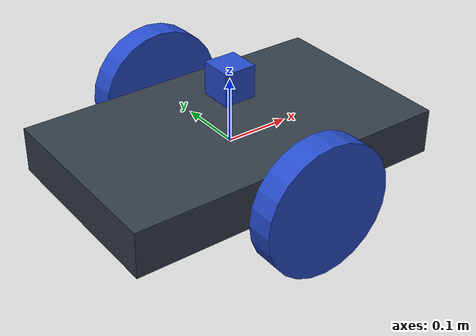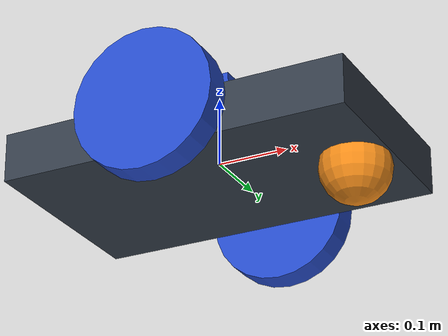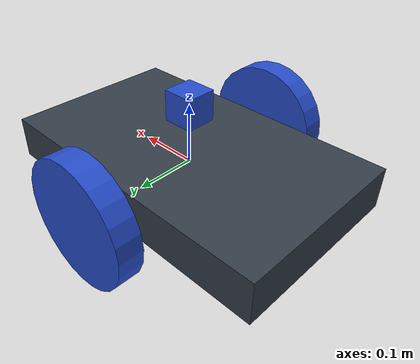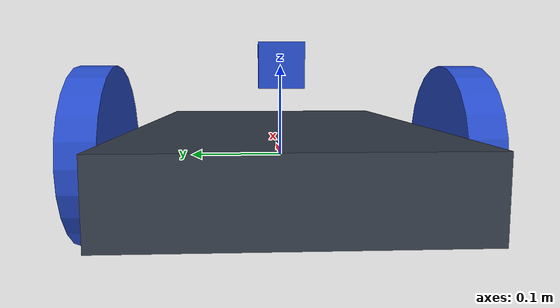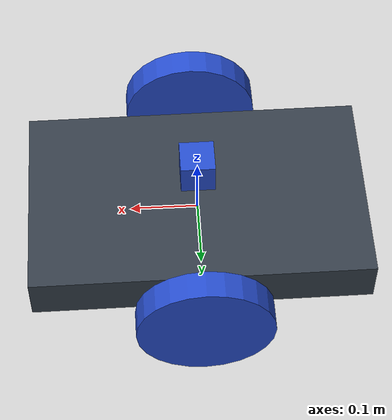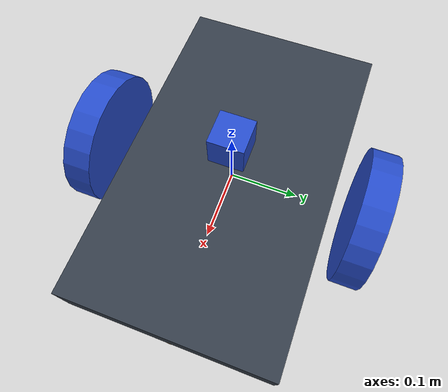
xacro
<?xml version="1.0" ?>

<robot name="droid" xmlns:xacro="https://www.ros.org/wiki/xacro" >

  <material name="black">
    <color rgba="0.0 0.0 0.0 1.0"/>
  </material>
  <material name="blue">
    <color rgba="0.203125 0.23828125 0.28515625 1.0"/>
  </material>
  <material name="green">
    <color rgba="0.0 0.8 0.0 1.0"/>
  </material>
  <material name="grey">
    <color rgba="0.2 0.2 0.2 1.0"/>
  </material>
  <material name="orange">
    <color rgba="1.0 0.423529411765 0.0392156862745 1.0"/>
  </material>
  <material name="brown">
    <color rgba="0.870588235294 0.811764705882 0.764705882353 1.0"/>
  </material>
  <material name="red">
    <color rgba="0.80078125 0.12890625 0.1328125 1.0"/>
  </material>
  <material name="white">
    <color rgba="1.0 1.0 1.0 1.0"/>
  </material>

  <gazebo reference="base_link">
    <material>Gazebo/Orange</material>
  </gazebo>
  <gazebo reference="link_left_wheel">
    <material>Gazebo/Blue</material>
  </gazebo>
  <gazebo reference="link_right_wheel">
    <material>Gazebo/Blue</material>
  </gazebo>

  <link name="base_link">
    <!-- pose and inertial -->
    <pose>0 0 0.1 0 0 0</pose>

    <inertial>
      <mass value="5"/>
      <origin rpy="0 0 0" xyz="0 0 0.1"/>
      <inertia ixx="0.0395416666667" ixy="0" ixz="0" iyy="0.106208333333" iyz="0" izz="0.106208333333"/>
    </inertial>

    <collision name="collision_chassis">
      <geometry>
        <box size="0.5 0.3 0.07"/>
      </geometry>
    </collision>

    <visual>
      <origin rpy="0 0 0" xyz="0 0 0"/>
      <geometry>
        <box size="0.5 0.3 0.07"/>
      </geometry>
      <material name="blue"/>
    </visual>

    <!-- caster front -->
    <collision name="caster_front_collision">
      <origin rpy=" 0 0 0" xyz="-0.35 0 -0.05"/>
      <geometry>
        <sphere radius="0.05"/>
      </geometry>
      <surface>
        <friction>
          <ode>
            <mu>0</mu>
            <mu2>0</mu2>
            <slip1>1.0</slip1>
            <slip2>1.0</slip2>
          </ode>
        </friction>
      </surface>
    </collision>
    <visual name="caster_front_visual">
      <origin rpy=" 0 0 0" xyz="0.2 0 -0.05"/>
      <geometry>
        <sphere radius="0.05"/>
      </geometry>
    </visual>
  </link>

  <!-- Create wheel right -->

  <link name="link_right_wheel">
    <inertial>
      <mass value="0.2"/>
      <origin rpy="0 1.5707 1.5707" xyz="0 0 0"/>
      <inertia ixx="0.00052666666" ixy="0" ixz="0" iyy="0.00052666666" iyz="0" izz="0.001"/>
    </inertial>

    <collision name="link_right_wheel_collision">
      <origin rpy="0 1.5707 1.5707" xyz="0 0 0" />
      <geometry>
        <cylinder length="0.04" radius="0.1"/>
      </geometry>
    </collision>

    <visual name="link_right_wheel_visual">
      <origin rpy="0 1.5707 1.5707" xyz="0 0 0"/>
      <geometry>
        <cylinder length="0.04" radius="0.1"/>
      </geometry>
    </visual>

  </link>

  <!--   Joint for right wheel  -->
  <joint name="joint_right_wheel" type="continuous">
    <origin rpy="0 0 0" xyz="0 0.2 0"/>
    <child link="link_right_wheel" />
    <parent link="base_link"/>
    <axis rpy="0 0 0" xyz="0 1 0"/>
    <limit effort="10000" velocity="1000"/>
    <joint_properties damping="1.0" friction="1.0" />
  </joint>

  <!-- Left Wheel link -->

  <link name="link_left_wheel">
    <inertial>
      <mass value="0.2"/>
      <origin rpy="0 1.5707 1.5707" xyz="0 0 0"/>
      <inertia ixx="0.00052666666" ixy="0" ixz="0" iyy="0.00052666666" iyz="0" izz="0.001"/>
    </inertial>

    <collision name="link_left_wheel_collision">
      <origin rpy="0 1.5707 1.5707" xyz="0 0 0" />
      <geometry>
        <cylinder length="0.04" radius="0.1"/>
      </geometry>
    </collision>

    <visual name="link_left_wheel_visual">
      <origin rpy="0 1.5707 1.5707" xyz="0 0 0"/>
      <geometry>
        <cylinder length="0.04" radius="0.1"/>
      </geometry>
    </visual>

  </link>

  <!--   Joint for right wheel  -->
  <joint name="joint_left_wheel" type="continuous">
    <origin rpy="0 0 0" xyz="0 -0.2 0"/>
    <child link="link_left_wheel" />
    <parent link="base_link"/>
    <axis rpy="0 0 0" xyz="0 1 0"/>
    <limit effort="10000" velocity="1000"/>
    <joint_properties damping="1.0" friction="1.0" />
  </joint>

  <link name = "hokuyo_link">
    <visual>
      <origin xyz = "0 0 0" rpy = "0 0 0"/>
      <geometry>
	<box size = "0.05 0.05 0.05"/>
      </geometry>
      <material name = "Blue"/>
    </visual>
  </link>

  <joint name = "joint_hokuyo" type="fixed">
    <origin xyz="0 0 0.1" rpy="0 0 0"/>
    <parent link="base_link"/>
    <child link="hokuyo_link"/>
  </joint>

</robot>
